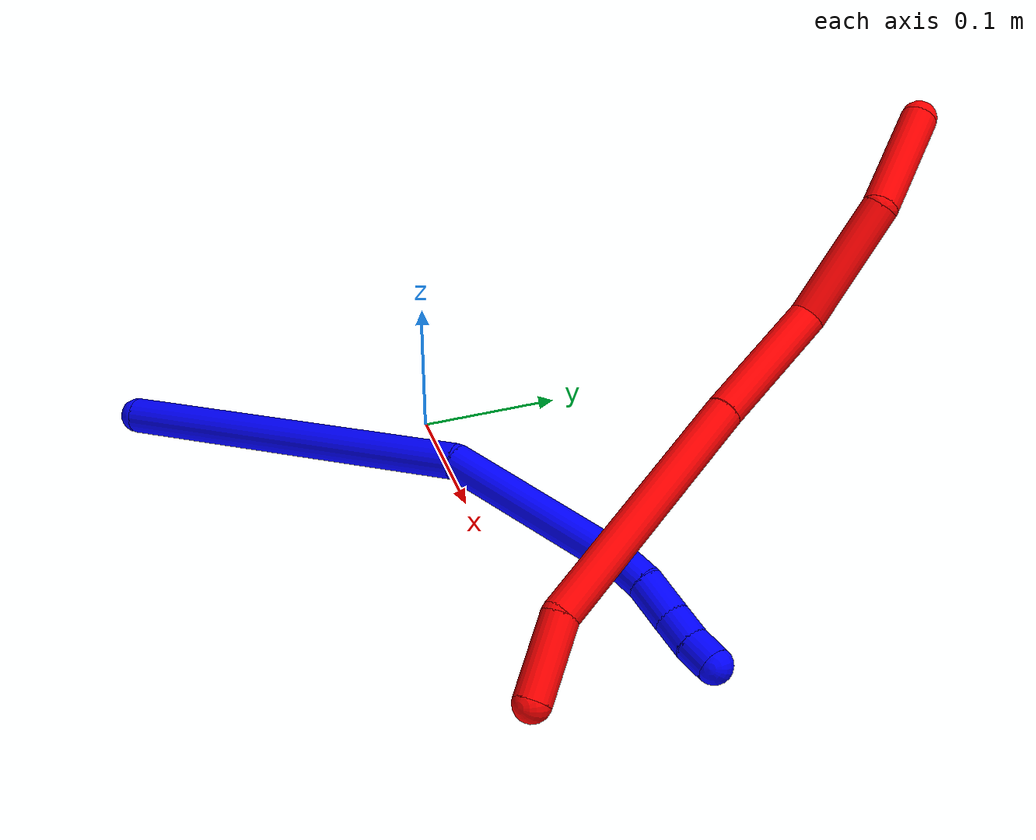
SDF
<sdf version="1.7">
 <world name="default">
  <plugin name="TubeGeneratorPlugin" filename="libtube_generator_plugin.so"/>
  <model name="photoneo_s_sensor">
   <static>1</static>
   <pose>0 0 2 1.57079 1.57079 3.14159</pose>
   <link name="link">
    <inertial><mass>0.1</mass></inertial>
    <sensor name="sensor" type="depth">
     <update_rate>30</update_rate>
     <camera>
      <horizontal_fov>1.22</horizontal_fov>
      <image><width>1920</width><height>1200</height><format>B8G8R8</format></image>
      <clip><near>0.1</near><far>4</far></clip>
      <depth_camera><output>points</output></depth_camera>
     </camera>
     <plugin name="camera_plugin" filename="libgazebo_ros_depth_camera.so">
      <baseline>0.2</baseline>
      <alwaysOn>1</alwaysOn>
      <updateRate>0.0</updateRate>
      <cameraName>camera_ir</cameraName>
      <imageTopicName>/camera/color/image_raw</imageTopicName>
      <cameraInfoTopicName>/camera/color/camera_info</cameraInfoTopicName>
      <depthImageTopicName>/camera/depth/image_raw</depthImageTopicName>
      <depthImageCameraInfoTopicName>/camera/depth/camera_info</depthImageCameraInfoTopicName>
      <pointCloudTopicName>/camera/depth/points</pointCloudTopicName>
      <frameName>fr_optical</frameName>
      <pointCloudCutoff>0.1</pointCloudCutoff>
      <pointCloudCutoffMax>2.0</pointCloudCutoffMax>
      <distortionK1>0</distortionK1>
      <distortionK2>0</distortionK2>
      <distortionK3>0</distortionK3>
      <distortionT1>0</distortionT1>
      <distortionT2>0</distortionT2>
      <CxPrime>0</CxPrime>
      <Cx>0</Cx>
      <Cy>0</Cy>
      <focalLength>0</focalLength>
      <hackBaseline>0</hackBaseline>
     </plugin>
    </sensor>
   </link>
  </model>
  <gravity>0 0 -9.8</gravity>
  <magnetic_field>6e-06 2.3e-05 -4.2e-05</magnetic_field>
  <atmosphere type="adiabatic"/>
  <physics name="default_physics" default="0" type="ode">
   <max_step_size>0.003</max_step_size>
   <real_time_factor>1</real_time_factor>
   <real_time_update_rate>1000</real_time_update_rate>
   <max_contacts>10000</max_contacts>
   <ode>
    <solver>
     <type>quick</type>
     <iters>100</iters>
     <sor>1.3</sor>
     <use_dynamic_moi_rescaling>0</use_dynamic_moi_rescaling>
    </solver>
    <constraints>
     <contact_max_correcting_vel>0</contact_max_correcting_vel>
     <contact_surface_layer>0.001</contact_surface_layer>
     <cfm>0</cfm>
     <erp>0.2</erp>
    </constraints>
   </ode>
  </physics>
  <scene><ambient>0.4 0.4 0.4 1</ambient><background>0.7 0.7 0.7 1</background><shadows>0</shadows></scene>
  <audio><device>default</device></audio>
  <spherical_coordinates>
   <surface_model>EARTH_WGS84</surface_model>
   <latitude_deg>0</latitude_deg>
   <longitude_deg>0</longitude_deg>
   <elevation>0</elevation>
   <heading_deg>0</heading_deg>
  </spherical_coordinates>
  <model name="bin">
   <static>1</static>
   <link name="bottom">
    <collision name="collision-bottom">
     <pose>0 0 -0.01 0 -0 0</pose>
     <geometry><box><size>0.8 0.6 0.02</size></box></geometry>
     <surface>
      <friction><ode><mu>100</mu><mu2>100</mu2></ode></friction>
      <contact><collide_bitmask>65535</collide_bitmask></contact>
     </surface>
    </collision>
   </link>
   <link name="west_wall">
    <collision name="collision-west_wall">
     <pose>-0.41 0 0.1 0 -0 0</pose>
     <geometry><box><size>0.02 0.6 0.2</size></box></geometry>
     <surface>
      <friction><ode><mu>100</mu><mu2>100</mu2></ode></friction>
      <contact><collide_bitmask>65535</collide_bitmask></contact>
     </surface>
    </collision>
   </link>
   <link name="east_wall">
    <collision name="collision-east_wall">
     <pose>0.41 0 0.1 0 -0 0</pose>
     <geometry><box><size>0.02 0.6 0.2</size></box></geometry>
     <surface>
      <friction><ode><mu>100</mu><mu2>100</mu2></ode></friction>
      <contact><collide_bitmask>65535</collide_bitmask></contact>
     </surface>
    </collision>
   </link>
   <link name="south_wall">
    <collision name="collision-south_wall">
     <pose>0 -0.31 0.1 0 -0 0</pose>
     <geometry><box><size>0.8 0.02 0.2</size></box></geometry>
     <surface>
      <friction><ode><mu>100</mu><mu2>100</mu2></ode></friction>
      <contact><collide_bitmask>65535</collide_bitmask></contact>
     </surface>
    </collision>
   </link>
   <link name="north_wall">
    <collision name="collision-north_wall">
     <pose>0 0.31 0.1 0 -0 0</pose>
     <geometry><box><size>0.8 0.02 0.2</size></box></geometry>
     <surface>
      <friction><ode><mu>100</mu><mu2>100</mu2></ode></friction>
      <contact><collide_bitmask>65535</collide_bitmask></contact>
     </surface>
    </collision>
   </link>
  </model>
  <model name="1">
   <static>0</static>
   <link name="1">
    <collision name="collision-cylinder-e_1_1_4">
     <pose>0.103284 0.080876 -0.017321 -1.78177 0.895565 -1.07211</pose>
     <geometry><cylinder><radius>0.0125</radius><length>0.264639</length></cylinder></geometry>
     <surface>
      <friction><ode><mu>1.16</mu><mu2>1.16</mu2><slip1>0</slip1><slip2>0</slip2></ode></friction>
      <contact><ode><kp>1e+06</kp><kd>1</kd><max_vel>0</max_vel><min_depth>0.001</min_depth></ode></contact>
     </surface>
    </collision>
    <visual name="visual-cylinder-e_1_1_4">
     <pose>0.103284 0.080876 -0.017321 -1.78177 0.895565 -1.07211</pose>
     <geometry><cylinder><radius>0.0125</radius><length>0.264639</length></cylinder></geometry>
     <material><ambient>0 0 1 1</ambient></material>
    </visual>
    <collision name="collision-cylinder-e_2_4_5">
     <pose>0.242265 0.220038 -0.048601 -1.80587 0.53719 -0.671481</pose>
     <geometry><cylinder><radius>0.0125</radius><length>0.139518</length></cylinder></geometry>
     <surface>
      <friction><ode><mu>1.16</mu><mu2>1.16</mu2><slip1>0</slip1><slip2>0</slip2></ode></friction>
      <contact><ode><kp>1e+06</kp><kd>1</kd><max_vel>0</max_vel><min_depth>0.001</min_depth></ode></contact>
     </surface>
    </collision>
    <visual name="visual-cylinder-e_2_4_5">
     <pose>0.242265 0.220038 -0.048601 -1.80587 0.53719 -0.671481</pose>
     <geometry><cylinder><radius>0.0125</radius><length>0.139518</length></cylinder></geometry>
     <material><ambient>0 0 1 1</ambient></material>
    </visual>
    <collision name="collision-cylinder-e_3_5_6">
     <pose>0.281969 0.288073 -0.065539 -1.86739 0.374468 -0.501235</pose>
     <geometry><cylinder><radius>0.0125</radius><length>0.021908</length></cylinder></geometry>
     <surface>
      <friction><ode><mu>1.16</mu><mu2>1.16</mu2><slip1>0</slip1><slip2>0</slip2></ode></friction>
      <contact><ode><kp>1e+06</kp><kd>1</kd><max_vel>0</max_vel><min_depth>0.001</min_depth></ode></contact>
     </surface>
    </collision>
    <visual name="visual-cylinder-e_3_5_6">
     <pose>0.281969 0.288073 -0.065539 -1.86739 0.374468 -0.501235</pose>
     <geometry><cylinder><radius>0.0125</radius><length>0.021908</length></cylinder></geometry>
     <material><ambient>0 0 1 1</ambient></material>
    </visual>
    <collision name="collision-cylinder-e_4_6_7">
     <pose>0.288923 0.311921 -0.073164 -1.88909 0.196013 -0.27018</pose>
     <geometry><cylinder><radius>0.0125</radius><length>0.030267</length></cylinder></geometry>
     <surface>
      <friction><ode><mu>1.16</mu><mu2>1.16</mu2><slip1>0</slip1><slip2>0</slip2></ode></friction>
      <contact><ode><kp>1e+06</kp><kd>1</kd><max_vel>0</max_vel><min_depth>0.001</min_depth></ode></contact>
     </surface>
    </collision>
    <visual name="visual-cylinder-e_4_6_7">
     <pose>0.288923 0.311921 -0.073164 -1.88909 0.196013 -0.27018</pose>
     <geometry><cylinder><radius>0.0125</radius><length>0.030267</length></cylinder></geometry>
     <material><ambient>0 0 1 1</ambient></material>
    </visual>
    <collision name="collision-cylinder-e_5_7_8">
     <pose>0.294592 0.335949 -0.082779 -2.0348 0.240357 -0.386077</pose>
     <geometry><cylinder><radius>0.0125</radius><length>0.022864</length></cylinder></geometry>
     <surface>
      <friction><ode><mu>1.16</mu><mu2>1.16</mu2><slip1>0</slip1><slip2>0</slip2></ode></friction>
      <contact><ode><kp>1e+06</kp><kd>1</kd><max_vel>0</max_vel><min_depth>0.001</min_depth></ode></contact>
     </surface>
    </collision>
    <visual name="visual-cylinder-e_5_7_8">
     <pose>0.294592 0.335949 -0.082779 -2.0348 0.240357 -0.386077</pose>
     <geometry><cylinder><radius>0.0125</radius><length>0.022864</length></cylinder></geometry>
     <material><ambient>0 0 1 1</ambient></material>
    </visual>
    <collision name="collision-cylinder-e_6_8_2">
     <pose>0.301022 0.354674 -0.091879 -2.00984 0.364533 -0.564845</pose>
     <geometry><cylinder><radius>0.0125</radius><length>0.020802</length></cylinder></geometry>
     <surface>
      <friction><ode><mu>1.16</mu><mu2>1.16</mu2><slip1>0</slip1><slip2>0</slip2></ode></friction>
      <contact><ode><kp>1e+06</kp><kd>1</kd><max_vel>0</max_vel><min_depth>0.001</min_depth></ode></contact>
     </surface>
    </collision>
    <visual name="visual-cylinder-e_6_8_2">
     <pose>0.301022 0.354674 -0.091879 -2.00984 0.364533 -0.564845</pose>
     <geometry><cylinder><radius>0.0125</radius><length>0.020802</length></cylinder></geometry>
     <material><ambient>0 0 1 1</ambient></material>
    </visual>
    <collision name="collision-sphere-2">
     <pose>0.30473 0.363471 -0.09601 0 -0 0</pose>
     <geometry><sphere><radius>0.0125</radius></sphere></geometry>
     <surface>
      <friction><ode><mu>1.16</mu><mu2>1.16</mu2><slip1>0</slip1><slip2>0</slip2></ode></friction>
      <contact><ode><kp>1e+06</kp><kd>1</kd><max_vel>0</max_vel><min_depth>0.001</min_depth></ode></contact>
     </surface>
    </collision>
    <visual name="visual-sphere-2">
     <pose>0.30473 0.363471 -0.09601 0 -0 0</pose>
     <geometry><sphere><radius>0.0125</radius></sphere></geometry>
     <material><ambient>0 0 1 1</ambient></material>
    </visual>
    <collision name="collision-sphere-4">
     <pose>0.206567 0.161752 -0.034641 0 -0 0</pose>
     <geometry><sphere><radius>0.0125</radius></sphere></geometry>
     <surface>
      <friction><ode><mu>1.16</mu><mu2>1.16</mu2><slip1>0</slip1><slip2>0</slip2></ode></friction>
      <contact><ode><kp>1e+06</kp><kd>1</kd><max_vel>0</max_vel><min_depth>0.001</min_depth></ode></contact>
     </surface>
    </collision>
    <visual name="visual-sphere-4">
     <pose>0.206567 0.161752 -0.034641 0 -0 0</pose>
     <geometry><sphere><radius>0.0125</radius></sphere></geometry>
     <material><ambient>0 0 1 1</ambient></material>
    </visual>
    <collision name="collision-sphere-1">
     <geometry><sphere><radius>0.0125</radius></sphere></geometry>
     <surface>
      <friction><ode><mu>1.16</mu><mu2>1.16</mu2><slip1>0</slip1><slip2>0</slip2></ode></friction>
      <contact><ode><kp>1e+06</kp><kd>1</kd><max_vel>0</max_vel><min_depth>0.001</min_depth></ode></contact>
     </surface>
    </collision>
    <visual name="visual-sphere-1">
     <geometry><sphere><radius>0.0125</radius></sphere></geometry>
     <material><ambient>0 0 1 1</ambient></material>
    </visual>
    <collision name="collision-sphere-8">
     <pose>0.297313 0.345878 -0.087748 0 -0 0</pose>
     <geometry><sphere><radius>0.0125</radius></sphere></geometry>
     <surface>
      <friction><ode><mu>1.16</mu><mu2>1.16</mu2><slip1>0</slip1><slip2>0</slip2></ode></friction>
      <contact><ode><kp>1e+06</kp><kd>1</kd><max_vel>0</max_vel><min_depth>0.001</min_depth></ode></contact>
     </surface>
    </collision>
    <visual name="visual-sphere-8">
     <pose>0.297313 0.345878 -0.087748 0 -0 0</pose>
     <geometry><sphere><radius>0.0125</radius></sphere></geometry>
     <material><ambient>0 0 1 1</ambient></material>
    </visual>
    <collision name="collision-sphere-5">
     <pose>0.277962 0.278323 -0.06256 0 -0 0</pose>
     <geometry><sphere><radius>0.0125</radius></sphere></geometry>
     <surface>
      <friction><ode><mu>1.16</mu><mu2>1.16</mu2><slip1>0</slip1><slip2>0</slip2></ode></friction>
      <contact><ode><kp>1e+06</kp><kd>1</kd><max_vel>0</max_vel><min_depth>0.001</min_depth></ode></contact>
     </surface>
    </collision>
    <visual name="visual-sphere-5">
     <pose>0.277962 0.278323 -0.06256 0 -0 0</pose>
     <geometry><sphere><radius>0.0125</radius></sphere></geometry>
     <material><ambient>0 0 1 1</ambient></material>
    </visual>
    <collision name="collision-sphere-6">
     <pose>0.285976 0.297823 -0.068519 0 -0 0</pose>
     <geometry><sphere><radius>0.0125</radius></sphere></geometry>
     <surface>
      <friction><ode><mu>1.16</mu><mu2>1.16</mu2><slip1>0</slip1><slip2>0</slip2></ode></friction>
      <contact><ode><kp>1e+06</kp><kd>1</kd><max_vel>0</max_vel><min_depth>0.001</min_depth></ode></contact>
     </surface>
    </collision>
    <visual name="visual-sphere-6">
     <pose>0.285976 0.297823 -0.068519 0 -0 0</pose>
     <geometry><sphere><radius>0.0125</radius></sphere></geometry>
     <material><ambient>0 0 1 1</ambient></material>
    </visual>
    <collision name="collision-sphere-7">
     <pose>0.291871 0.326019 -0.07781 0 -0 0</pose>
     <geometry><sphere><radius>0.0125</radius></sphere></geometry>
     <surface>
      <friction><ode><mu>1.16</mu><mu2>1.16</mu2><slip1>0</slip1><slip2>0</slip2></ode></friction>
      <contact><ode><kp>1e+06</kp><kd>1</kd><max_vel>0</max_vel><min_depth>0.001</min_depth></ode></contact>
     </surface>
    </collision>
    <visual name="visual-sphere-7">
     <pose>0.291871 0.326019 -0.07781 0 -0 0</pose>
     <geometry><sphere><radius>0.0125</radius></sphere></geometry>
     <material><ambient>0 0 1 1</ambient></material>
    </visual>
    <inertial>
     <pose>0.178107 0.165828 -0.037637 0 -0 0</pose>
     <mass>0.5</mass>
     <inertia>
      <ixx>-0.000328</ixx>
      <ixy>0</ixy>
      <ixz>0</ixz>
      <iyy>-3.8e-05</iyy>
      <iyz>0</iyz>
      <izz>-0.002494</izz>
     </inertia>
    </inertial>
   </link>
   <pose>-0.063185 -0.202325 0.011743 -2.22568 -0.645482 1.32366</pose>
  </model>
  <model name="2">
   <static>0</static>
   <link name="2">
    <collision name="collision-cylinder-e_1_1_4">
     <pose>0.018966 -0.021844 -0.026824 2.45816 0.501497 1.24825</pose>
     <geometry><cylinder><radius>0.0125</radius><length>0.078902</length></cylinder></geometry>
     <surface>
      <friction><ode><mu>1.16</mu><mu2>1.16</mu2><slip1>0</slip1><slip2>0</slip2></ode></friction>
      <contact><ode><kp>1e+06</kp><kd>1</kd><max_vel>0</max_vel><min_depth>0.001</min_depth></ode></contact>
     </surface>
    </collision>
    <visual name="visual-cylinder-e_1_1_4">
     <pose>0.018966 -0.021844 -0.026824 2.45816 0.501497 1.24825</pose>
     <geometry><cylinder><radius>0.0125</radius><length>0.078902</length></cylinder></geometry>
     <material><ambient>1 0 0 1</ambient></material>
    </visual>
    <collision name="collision-cylinder-e_2_4_5">
     <pose>0.074104 -0.059361 -0.073614 2.47612 0.95892 1.96833</pose>
     <geometry><cylinder><radius>0.0125</radius><length>0.08838</length></cylinder></geometry>
     <surface>
      <friction><ode><mu>1.16</mu><mu2>1.16</mu2><slip1>0</slip1><slip2>0</slip2></ode></friction>
      <contact><ode><kp>1e+06</kp><kd>1</kd><max_vel>0</max_vel><min_depth>0.001</min_depth></ode></contact>
     </surface>
    </collision>
    <visual name="visual-cylinder-e_2_4_5">
     <pose>0.074104 -0.059361 -0.073614 2.47612 0.95892 1.96833</pose>
     <geometry><cylinder><radius>0.0125</radius><length>0.08838</length></cylinder></geometry>
     <material><ambient>1 0 0 1</ambient></material>
    </visual>
    <collision name="collision-cylinder-e_3_5_6">
     <pose>0.133669 -0.09107 -0.133008 2.75528 0.502534 1.83934</pose>
     <geometry><cylinder><radius>0.0125</radius><length>0.097136</length></cylinder></geometry>
     <surface>
      <friction><ode><mu>1.16</mu><mu2>1.16</mu2><slip1>0</slip1><slip2>0</slip2></ode></friction>
      <contact><ode><kp>1e+06</kp><kd>1</kd><max_vel>0</max_vel><min_depth>0.001</min_depth></ode></contact>
     </surface>
    </collision>
    <visual name="visual-cylinder-e_3_5_6">
     <pose>0.133669 -0.09107 -0.133008 2.75528 0.502534 1.83934</pose>
     <geometry><cylinder><radius>0.0125</radius><length>0.097136</length></cylinder></geometry>
     <material><ambient>1 0 0 1</ambient></material>
    </visual>
    <collision name="collision-cylinder-e_4_6_7">
     <pose>0.202291 -0.139429 -0.242848 2.71125 0.528402 1.78253</pose>
     <geometry><cylinder><radius>0.0125</radius><length>0.179427</length></cylinder></geometry>
     <surface>
      <friction><ode><mu>1.16</mu><mu2>1.16</mu2><slip1>0</slip1><slip2>0</slip2></ode></friction>
      <contact><ode><kp>1e+06</kp><kd>1</kd><max_vel>0</max_vel><min_depth>0.001</min_depth></ode></contact>
     </surface>
    </collision>
    <visual name="visual-cylinder-e_4_6_7">
     <pose>0.202291 -0.139429 -0.242848 2.71125 0.528402 1.78253</pose>
     <geometry><cylinder><radius>0.0125</radius><length>0.179427</length></cylinder></geometry>
     <material><ambient>1 0 0 1</ambient></material>
    </visual>
    <collision name="collision-cylinder-e_5_7_2">
     <pose>0.262533 -0.189873 -0.328578 2.27248 0.564111 1.11624</pose>
     <geometry><cylinder><radius>0.0125</radius><length>0.056155</length></cylinder></geometry>
     <surface>
      <friction><ode><mu>1.16</mu><mu2>1.16</mu2><slip1>0</slip1><slip2>0</slip2></ode></friction>
      <contact><ode><kp>1e+06</kp><kd>1</kd><max_vel>0</max_vel><min_depth>0.001</min_depth></ode></contact>
     </surface>
    </collision>
    <visual name="visual-cylinder-e_5_7_2">
     <pose>0.262533 -0.189873 -0.328578 2.27248 0.564111 1.11624</pose>
     <geometry><cylinder><radius>0.0125</radius><length>0.056155</length></cylinder></geometry>
     <material><ambient>1 0 0 1</ambient></material>
    </visual>
    <collision name="collision-sphere-2">
     <pose>0.277545 -0.207995 -0.343894 0 -0 0</pose>
     <geometry><sphere><radius>0.0125</radius></sphere></geometry>
     <surface>
      <friction><ode><mu>1.16</mu><mu2>1.16</mu2><slip1>0</slip1><slip2>0</slip2></ode></friction>
      <contact><ode><kp>1e+06</kp><kd>1</kd><max_vel>0</max_vel><min_depth>0.001</min_depth></ode></contact>
     </surface>
    </collision>
    <visual name="visual-sphere-2">
     <pose>0.277545 -0.207995 -0.343894 0 -0 0</pose>
     <geometry><sphere><radius>0.0125</radius></sphere></geometry>
     <material><ambient>1 0 0 1</ambient></material>
    </visual>
    <collision name="collision-sphere-7">
     <pose>0.247521 -0.171751 -0.313262 0 -0 0</pose>
     <geometry><sphere><radius>0.0125</radius></sphere></geometry>
     <surface>
      <friction><ode><mu>1.16</mu><mu2>1.16</mu2><slip1>0</slip1><slip2>0</slip2></ode></friction>
      <contact><ode><kp>1e+06</kp><kd>1</kd><max_vel>0</max_vel><min_depth>0.001</min_depth></ode></contact>
     </surface>
    </collision>
    <visual name="visual-sphere-7">
     <pose>0.247521 -0.171751 -0.313262 0 -0 0</pose>
     <geometry><sphere><radius>0.0125</radius></sphere></geometry>
     <material><ambient>1 0 0 1</ambient></material>
    </visual>
    <collision name="collision-sphere-6">
     <pose>0.157062 -0.107107 -0.172434 0 -0 0</pose>
     <geometry><sphere><radius>0.0125</radius></sphere></geometry>
     <surface>
      <friction><ode><mu>1.16</mu><mu2>1.16</mu2><slip1>0</slip1><slip2>0</slip2></ode></friction>
      <contact><ode><kp>1e+06</kp><kd>1</kd><max_vel>0</max_vel><min_depth>0.001</min_depth></ode></contact>
     </surface>
    </collision>
    <visual name="visual-sphere-6">
     <pose>0.157062 -0.107107 -0.172434 0 -0 0</pose>
     <geometry><sphere><radius>0.0125</radius></sphere></geometry>
     <material><ambient>1 0 0 1</ambient></material>
    </visual>
    <collision name="collision-sphere-5">
     <pose>0.110276 -0.075033 -0.093581 0 -0 0</pose>
     <geometry><sphere><radius>0.0125</radius></sphere></geometry>
     <surface>
      <friction><ode><mu>1.16</mu><mu2>1.16</mu2><slip1>0</slip1><slip2>0</slip2></ode></friction>
      <contact><ode><kp>1e+06</kp><kd>1</kd><max_vel>0</max_vel><min_depth>0.001</min_depth></ode></contact>
     </surface>
    </collision>
    <visual name="visual-sphere-5">
     <pose>0.110276 -0.075033 -0.093581 0 -0 0</pose>
     <geometry><sphere><radius>0.0125</radius></sphere></geometry>
     <material><ambient>1 0 0 1</ambient></material>
    </visual>
    <collision name="collision-sphere-1">
     <geometry><sphere><radius>0.0125</radius></sphere></geometry>
     <surface>
      <friction><ode><mu>1.16</mu><mu2>1.16</mu2><slip1>0</slip1><slip2>0</slip2></ode></friction>
      <contact><ode><kp>1e+06</kp><kd>1</kd><max_vel>0</max_vel><min_depth>0.001</min_depth></ode></contact>
     </surface>
    </collision>
    <visual name="visual-sphere-1">
     <geometry><sphere><radius>0.0125</radius></sphere></geometry>
     <material><ambient>1 0 0 1</ambient></material>
    </visual>
    <collision name="collision-sphere-4">
     <pose>0.037931 -0.043689 -0.053648 0 -0 0</pose>
     <geometry><sphere><radius>0.0125</radius></sphere></geometry>
     <surface>
      <friction><ode><mu>1.16</mu><mu2>1.16</mu2><slip1>0</slip1><slip2>0</slip2></ode></friction>
      <contact><ode><kp>1e+06</kp><kd>1</kd><max_vel>0</max_vel><min_depth>0.001</min_depth></ode></contact>
     </surface>
    </collision>
    <visual name="visual-sphere-4">
     <pose>0.037931 -0.043689 -0.053648 0 -0 0</pose>
     <geometry><sphere><radius>0.0125</radius></sphere></geometry>
     <material><ambient>1 0 0 1</ambient></material>
    </visual>
    <inertial>
     <pose>0.144138 -0.102991 -0.167134 0 -0 0</pose>
     <mass>0.5</mass>
     <inertia>
      <ixx>0.000481</ixx>
      <ixy>0</ixy>
      <ixz>0</ixz>
      <iyy>0.000823</iyy>
      <iyz>0</iyz>
      <izz>-0.000132</izz>
     </inertia>
    </inertial>
   </link>
   <pose>0.080825 0.335192 0.237277 2.20736 0.981367 -2.10813</pose>
  </model>
 </world>
</sdf>
